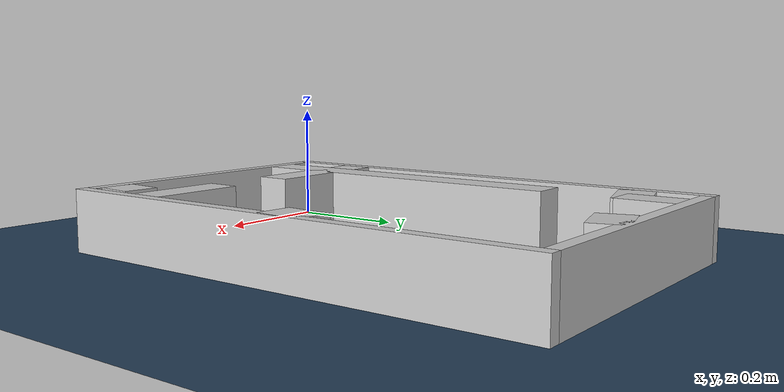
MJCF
<?xml version="1.0" ?>
<mujoco model="generated_real_template">
  <compiler angle="degree"/>
  <option timestep="0.002" integrator="implicitfast" iterations="100" cone="elliptic"/>
  <default>
    <geom density="1"/>
  </default>
  <asset>
    <texture builtin="gradient" height="3072" rgb1="0.3 0.5 0.7" rgb2="0 0 0" type="skybox" width="512"/>
    <texture builtin="checker" height="300" mark="edge" markrgb="0.8 0.8 0.8" name="groundplane" rgb1="0.2 0.3 0.4" rgb2="0.1 0.2 0.3" type="2d" width="300"/>
    <material name="groundplane" reflectance="0.2" texrepeat="5 5" texture="groundplane" texuniform="true"/>
  </asset>
  <worldbody>
    <light dir="0 0 -1" directional="true" pos="0 0 1.5"/>
    <geom name="floor" type="plane" condim="4" friction="0.5 0.005 0.001" material="groundplane" size="0 0 0.05"/>
    <body name="walls">
      <geom name="wall_boundary_left" type="box" condim="4" friction="1.0 0.005 0.0001" rgba="0.8 0.8 0.8 1" pos="-0.010000 0.387500 0.050000" euler="0 0 0.000000" size="0.010000 0.407500 0.050000"/>
      <geom name="wall_boundary_right" type="box" condim="4" friction="1.0 0.005 0.0001" rgba="0.8 0.8 0.8 1" pos="0.500000 0.387500 0.050000" euler="0 0 0.000000" size="0.010000 0.407500 0.050000"/>
      <geom name="wall_boundary_bottom" type="box" condim="4" friction="1.0 0.005 0.0001" rgba="0.8 0.8 0.8 1" pos="0.245000 -0.010000 0.050000" euler="0 0 0.000000" size="0.245000 0.010000 0.050000"/>
      <geom name="wall_boundary_top" type="box" condim="4" friction="1.0 0.005 0.0001" rgba="0.8 0.8 0.8 1" pos="0.245000 0.785000 0.050000" euler="0 0 0.000000" size="0.245000 0.010000 0.050000"/>
      <geom name="wall_inner_1_1" type="box" condim="4" friction="1.0 0.005 0.0001" rgba="0.8 0.8 0.8 1" pos="0.450780 0.033066 0.050000" euler="0 0 85.741260" size="0.033158 0.028500 0.050000"/>
      <geom name="wall_inner_1_2" type="box" condim="4" friction="1.0 0.005 0.0001" rgba="0.8 0.8 0.8 1" pos="0.478707 0.408088 0.050000" euler="0 0 85.741260" size="0.038660 0.028500 0.050000"/>
      <geom name="wall_inner_2_1" type="box" condim="4" friction="1.0 0.005 0.0001" rgba="0.8 0.8 0.8 1" pos="0.112612 0.123688 0.050000" euler="0 0 0.000000" size="0.112612 0.028500 0.050000"/>
      <geom name="wall_inner_2_2" type="box" condim="4" friction="1.0 0.005 0.0001" rgba="0.8 0.8 0.8 1" pos="0.413664 0.123688 0.050000" euler="0 0 0.000000" size="0.076336 0.028500 0.050000"/>
      <geom name="wall_inner_3_1" type="box" condim="4" friction="1.0 0.005 0.0001" rgba="0.8 0.8 0.8 1" pos="0.072893 0.282899 0.050000" euler="0 0 90.000000" size="0.282899 0.028500 0.050000"/>
      <geom name="wall_inner_3_2" type="box" condim="4" friction="1.0 0.005 0.0001" rgba="0.8 0.8 0.8 1" pos="0.072893 0.727853 0.050000" euler="0 0 90.000000" size="0.047147 0.028500 0.050000"/>
      <geom name="wall_inner_4_1" type="box" condim="4" friction="1.0 0.005 0.0001" rgba="0.8 0.8 0.8 1" pos="0.273194 0.756324 0.050000" euler="0 0 -164.058618" size="0.041039 0.028500 0.050000"/>
      <geom name="wall_inner_4_2" type="box" condim="4" friction="1.0 0.005 0.0001" rgba="0.8 0.8 0.8 1" pos="0.047357 0.691816 0.050000" euler="0 0 -164.058618" size="0.049251 0.028500 0.050000"/>
    </body>
  </worldbody>
</mujoco>
